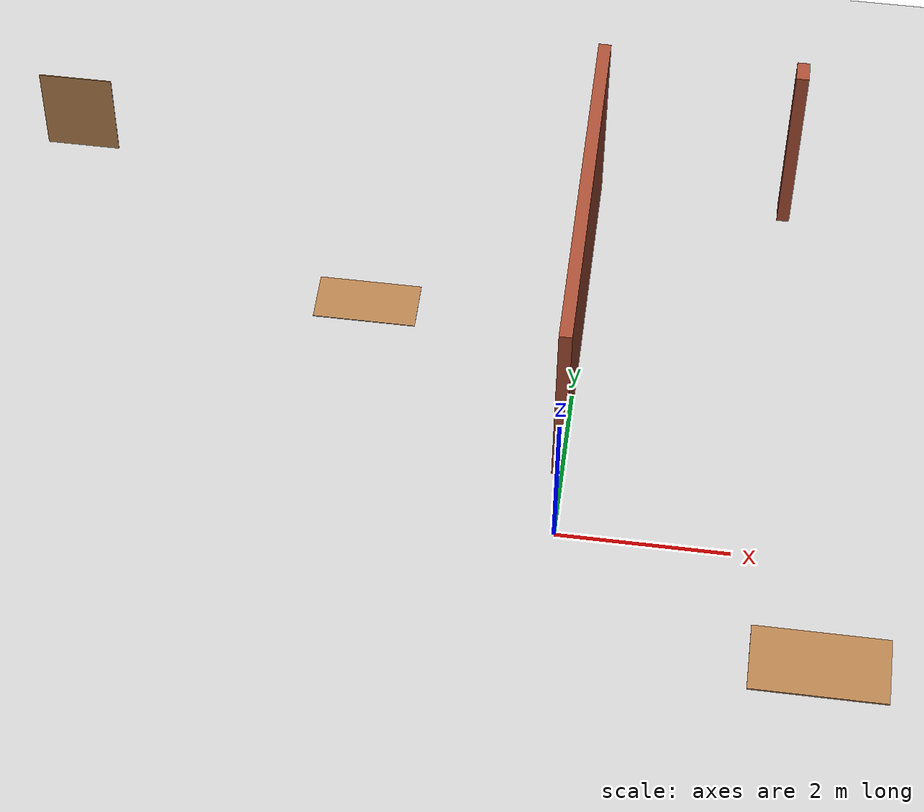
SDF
<sdf version="1.7">
 <world name="default">
  <light name="sun" type="directional">
   <pose>0 0 10 0 -0 0</pose>
   <diffuse>0.8 0.8 0.8 1</diffuse>
   <specular>0.2 0.2 0.2 1</specular>
   <attenuation>
    <range>1000</range>
    <constant>0.9</constant>
    <linear>0.01</linear>
    <quadratic>0.001</quadratic>
   </attenuation>
   <direction>-0.5 0.1 -0.9</direction>
   <spot><inner_angle>0</inner_angle><outer_angle>0</outer_angle><falloff>0</falloff></spot>
  </light>
  <model name="ground_plane">
   <static>1</static>
   <link name="ground_plane_link">
    <collision name="collision">
     <geometry><plane><normal>0 0 1</normal><size>100 100</size></plane></geometry>
     <surface>
      <contact><collide_bitmask>65535</collide_bitmask></contact>
      <friction><ode><mu>100</mu><mu2>50</mu2></ode></friction>
     </surface>
    </collision>
    <visual name="visual">
     <cast_shadows>0</cast_shadows>
     <geometry><plane><normal>0 0 1</normal><size>100 100</size></plane></geometry>
     <material>
      <script><uri>file://media/materials/scripts/gazebo.material</uri><name>Gazebo/Grey</name></script>
     </material>
    </visual>
   </link>
  </model>
  <gravity>0 0 -9.8</gravity>
  <magnetic_field>6e-06 2.3e-05 -4.2e-05</magnetic_field>
  <atmosphere type="adiabatic"/>
  <physics type="ode">
   <max_step_size>0.001</max_step_size>
   <real_time_factor>1</real_time_factor>
   <real_time_update_rate>1000</real_time_update_rate>
  </physics>
  <scene><ambient>0.4 0.4 0.4 1</ambient><background>0.7 0.7 0.7 1</background><shadows>1</shadows></scene>
  <audio><device>default</device></audio>
  <spherical_coordinates>
   <surface_model>EARTH_WGS84</surface_model>
   <latitude_deg>0</latitude_deg>
   <longitude_deg>0</longitude_deg>
   <elevation>0</elevation>
   <heading_deg>0</heading_deg>
  </spherical_coordinates>
  <model name="turtlebot3_house">
   <link name="Wall_101">
    <pose>-0.05 3.1 0 0 0 -1.5708</pose>
    <visual name="Wall_101_Visual">
     <pose>0 0 1.25 0 -0 0</pose>
     <geometry><box><size>4.5 0.15 2.5</size></box></geometry>
     <material>
      <script><uri>file://media/materials/scripts/gazebo.material</uri><name>Gazebo/Bricks</name></script>
      <ambient>1 1 1 1</ambient>
      <diffuse>1 1 1 1</diffuse>
      <specular>0.2 0.2 0.2 1</specular>
      <emissive>0 0 0 1</emissive>
     </material>
    </visual>
    <collision name="Wall_101_Collision">
     <pose>0 0 1.25 0 -0 0</pose>
     <geometry><box><size>4.5 0.15 2.5</size></box></geometry>
     <surface>
      <friction>
       <ode><mu>1</mu><mu2>1</mu2><fdir1>0 0 0</fdir1><slip1>0</slip1><slip2>0</slip2></ode>
       <torsional>
        <coefficient>1</coefficient>
        <patch_radius>0</patch_radius>
        <surface_radius>0</surface_radius>
        <use_patch_radius>1</use_patch_radius>
        <ode><slip>0</slip></ode>
       </torsional>
      </friction>
      <bounce><restitution_coefficient>0</restitution_coefficient><threshold>1e+06</threshold></bounce>
      <contact>
       <collide_without_contact>0</collide_without_contact>
       <collide_without_contact_bitmask>1</collide_without_contact_bitmask>
       <collide_bitmask>1</collide_bitmask>
       <ode>
        <soft_cfm>0</soft_cfm>
        <soft_erp>0.2</soft_erp>
        <kp>1e+13</kp>
        <kd>1</kd>
        <max_vel>0.01</max_vel>
        <min_depth>0</min_depth>
       </ode>
       <bullet>
        <split_impulse>1</split_impulse>
        <split_impulse_penetration_threshold>-0.01</split_impulse_penetration_threshold>
        <soft_cfm>0</soft_cfm>
        <soft_erp>0.2</soft_erp>
        <kp>1e+13</kp>
        <kd>1</kd>
       </bullet>
      </contact>
     </surface>
    </collision>
   </link>
   <link name="Wall_104">
    <pose>2.3 3.1 0 0 -0 1.5708</pose>
    <visual name="Wall_104_Visual_1">
     <pose>2.11625 0 1.25 0 -0 0</pose>
     <geometry><box><size>0.267504 0.15 2.5</size></box></geometry>
     <material>
      <script><uri>file://media/materials/scripts/gazebo.material</uri><name>Gazebo/Bricks</name></script>
      <ambient>1 1 1 1</ambient>
      <diffuse>1 1 1 1</diffuse>
      <specular>0.2 0.2 0.2 1</specular>
      <emissive>0 0 0 1</emissive>
     </material>
    </visual>
    <collision name="Wall_104_Collision_1">
     <pose>2.11625 0 1.25 0 -0 0</pose>
     <geometry><box><size>0.267504 0.15 2.5</size></box></geometry>
     <surface>
      <friction>
       <ode><mu>1</mu><mu2>1</mu2><fdir1>0 0 0</fdir1><slip1>0</slip1><slip2>0</slip2></ode>
       <torsional>
        <coefficient>1</coefficient>
        <patch_radius>0</patch_radius>
        <surface_radius>0</surface_radius>
        <use_patch_radius>1</use_patch_radius>
        <ode><slip>0</slip></ode>
       </torsional>
      </friction>
      <bounce><restitution_coefficient>0</restitution_coefficient><threshold>1e+06</threshold></bounce>
      <contact>
       <collide_without_contact>0</collide_without_contact>
       <collide_without_contact_bitmask>1</collide_without_contact_bitmask>
       <collide_bitmask>1</collide_bitmask>
       <ode>
        <soft_cfm>0</soft_cfm>
        <soft_erp>0.2</soft_erp>
        <kp>1e+13</kp>
        <kd>1</kd>
        <max_vel>0.01</max_vel>
        <min_depth>0</min_depth>
       </ode>
       <bullet>
        <split_impulse>1</split_impulse>
        <split_impulse_penetration_threshold>-0.01</split_impulse_penetration_threshold>
        <soft_cfm>0</soft_cfm>
        <soft_erp>0.2</soft_erp>
        <kp>1e+13</kp>
        <kd>1</kd>
       </bullet>
      </contact>
     </surface>
    </collision>
   </link>
  </model>
  <model name="bookshelf">
   <static>1</static>
   <link name="bookshelf_link">
    <inertial><mass>1</mass></inertial>
    <collision name="back">
     <pose>0 0.005 0.6 0 -0 0</pose>
     <geometry><box><size>0.9 0.01 1.2</size></box></geometry>
    </collision>
    <visual name="visual1">
     <pose>0 0.005 0.6 0 -0 0</pose>
     <geometry><box><size>0.9 0.01 1.2</size></box></geometry>
     <material>
      <script><uri>file://media/materials/scripts/gazebo.material</uri><name>Gazebo/Wood</name></script>
     </material>
    </visual>
   </link>
   <pose>-6.54397 5.19486 -0 0 -0 0</pose>
  </model>
  <model name="cafe_table">
   <static>1</static>
   <link name="cafe_table_link">
    <collision name="surface">
     <pose>0 0 0.755 0 -0 0</pose>
     <geometry><box><size>1.2 0.6 0.01</size></box></geometry>
    </collision>
    <visual name="visual">
     <pose>0 0 0.755 0 -0 0</pose>
     <geometry><box><size>1.2 0.6 0.01</size></box></geometry>
     <material>
      <script><uri>file://media/materials/scripts/gazebo.material</uri><name>Gazebo/Wood</name></script>
     </material>
    </visual>
   </link>
   <pose>-2.5 2.5 0 0 0 0</pose>
  </model>
  <model name="table">
   <static>0</static>
   <link name="table_link">
    <collision name="surface">
     <pose>0 0 1 0 -0 0</pose>
     <geometry><box><size>1.5 0.8 0.02</size></box></geometry>
    </collision>
    <visual name="visual">
     <pose>0 0 1 0 -0 0</pose>
     <geometry><box><size>1.5 0.8 0.02</size></box></geometry>
     <material>
      <script><uri>file://media/materials/scripts/gazebo.material</uri><name>Gazebo/Wood</name></script>
     </material>
    </visual>
   </link>
   <pose>3.0 -2.0 0 0 0 0</pose>
  </model>
 </world>
</sdf>
